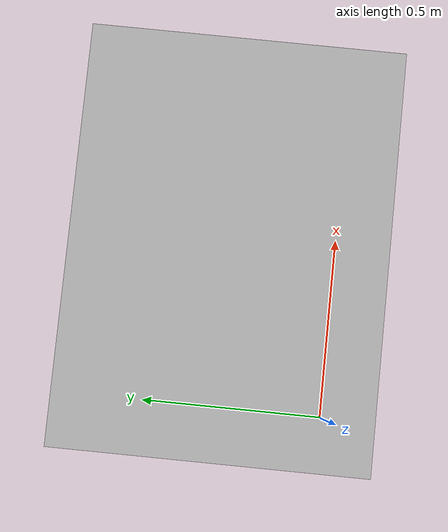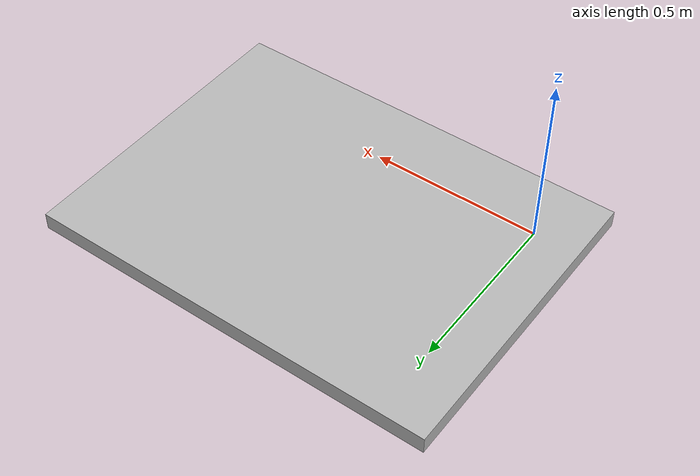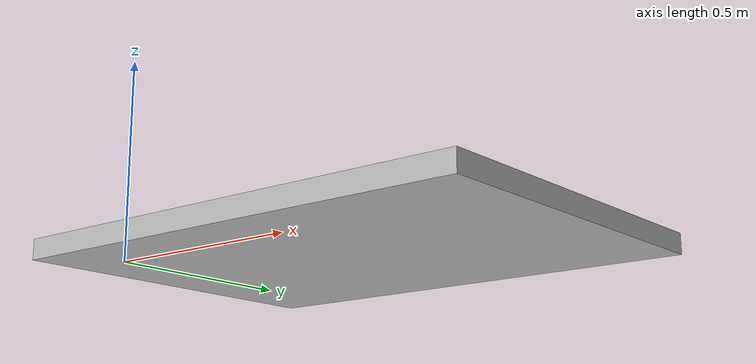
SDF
<?xml version="1.0"?>
<sdf version="1.4">
  <model name="chessboard_1200x900_10x7">
    <static>1</static>
    <link name="charuco">
      <pose>0 0 0 0 0 0</pose>
      <visual name="chessboard_1200x900_10x7">
        <geometry>
          <mesh>
            <uri>model://chessboard_1200x900_10x7/chessboard_1200x900_10x7.dae</uri>
          </mesh>
        </geometry>
      </visual>
      <collision name="chessboard_1200x900_10x7">
        <geometry>
          <mesh>
            <uri>model://chessboard_1200x900_10x7/chessboard_1200x900_10x7.dae</uri>
          </mesh>
        </geometry>
      </collision>
    </link>
  </model>
</sdf>
